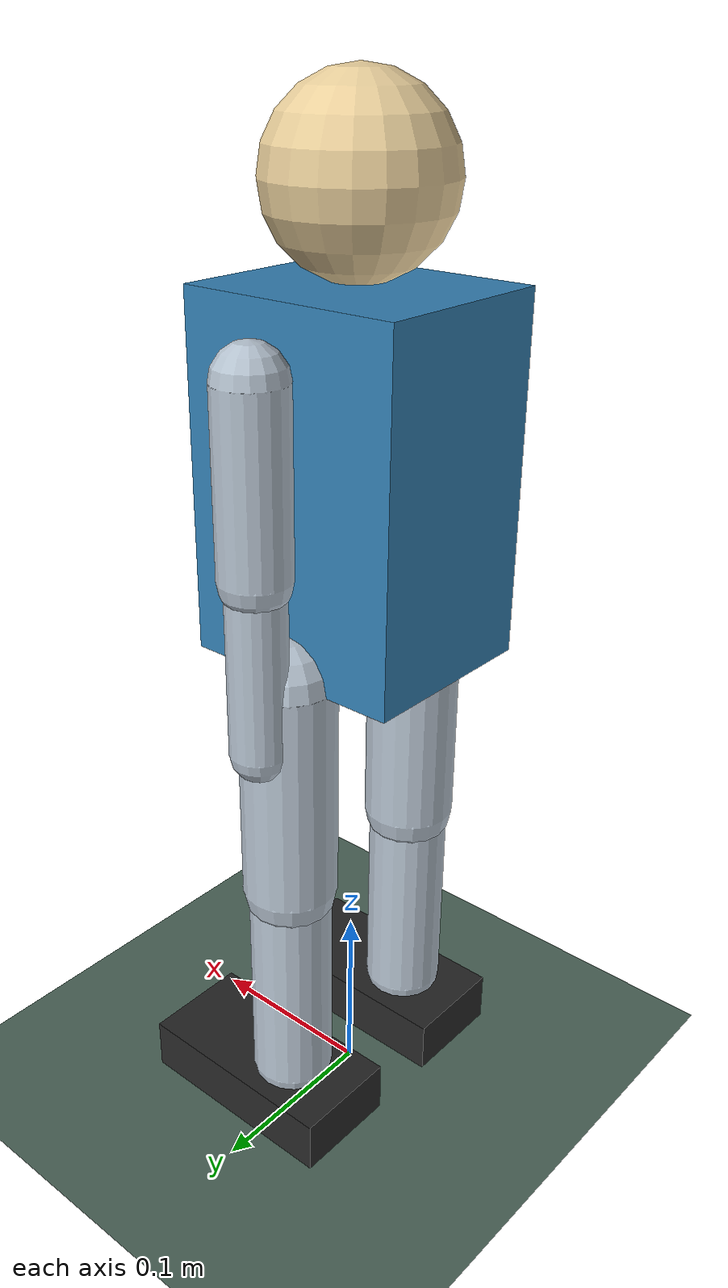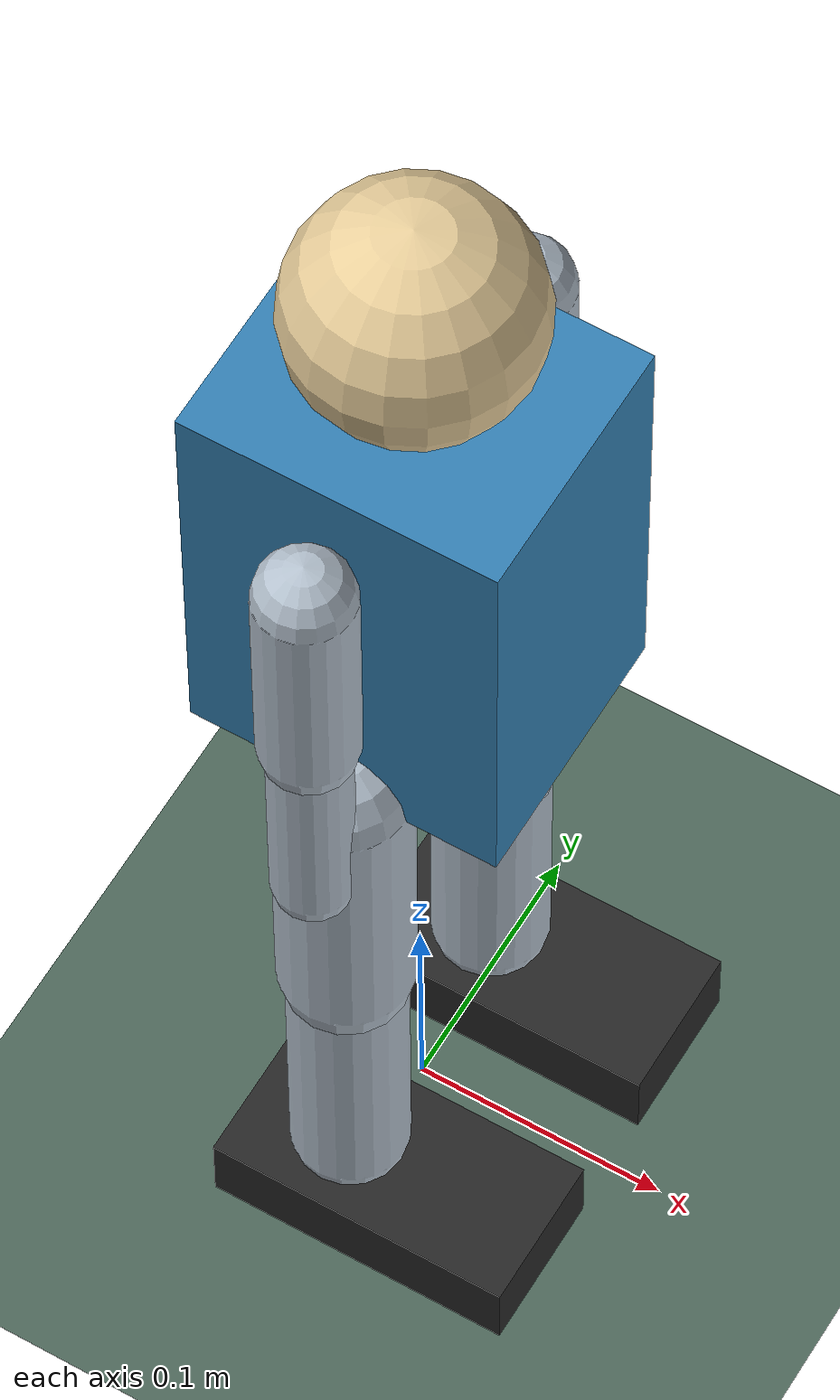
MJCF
<mujoco model="mini_humanoid">

  <!-- Acilar DERECE cinsinden (okumasi kolay). autolimits: range varsa eklem sinirli. -->
  <compiler angle="degree" autolimits="true"/>
  <!-- timestep: fizigi 5 ms adimlarla coz. gravity: -z yonunde 9.81. -->
  <option timestep="0.005" gravity="0 0 -9.81"/>

  <!-- Render tuvali boyutu (goruntu almak icin) -->
  <visual><global offwidth="1024" offheight="1024"/></visual>

  <!-- VARSAYILANLAR: tekrar tekrar yazmamak icin ortak ayarlar -->
  <default>
    <!-- Her eklem: damping=surtunme, armature=motorun yansiyan atalati (Gun-1 dersi!) -->
    <joint type="hinge" damping="0.3" armature="0.01"/>
    <!-- Uzuvlar kapsul (capsule); yogunluktan kutle otomatik hesaplanir -->
    <geom type="capsule" density="900" rgba="0.7 0.75 0.8 1" friction="1 0.1 0.1"/>

    <!-- POZISYON aktuator = HOBI SERVO: hedef aci verirsin, ic-PD onu tork'a cevirir,
         forcerange = servonun TORK TAVANI (asamaz). Bizim 'A' secimimizin kod hali. -->
    <default class="bacak_motor"><position kp="40" forcerange="-8 8"/></default>  <!-- XM540 ~8 Nm -->
    <default class="kol_motor"><position kp="20" forcerange="-3 3"/></default>    <!-- XM430/XL430 ~3 Nm -->
  </default>

  <worldbody>
    <light pos="0 0 2" dir="0 0 -1" diffuse="1 1 1"/>
    <geom name="zemin" type="plane" size="3 3 0.1" rgba="0.3 0.4 0.35 1"/>

    <!-- KOK: torso. freejoint = havada yuzen taban (6 DOF, MOTORSUZ).
         Bacaklar bunu ayakta tutmak zorunda. z=0.365'te basliyor (ayaklar zemine deger). -->
    <body name="torso" pos="0 0 0.365">
      <freejoint name="root"/>
      <geom name="torso_g" type="box" size="0.06 0.05 0.09" density="600" rgba="0.2 0.5 0.7 1"/>

      <!-- ============ SOL BACAK (6 DOF) ============ -->
      <body name="l_thigh" pos="0 0.05 -0.09">
        <joint name="l_hip_yaw"   axis="0 0 1" range="-40 40"/>   <!-- kalca: 3 eklem ayni noktada -->
        <joint name="l_hip_roll"  axis="1 0 0" range="-30 30"/>
        <joint name="l_hip_pitch" axis="0 1 0" range="-90 60"/>
        <geom name="l_thigh_g" fromto="0 0 0  0 0 -0.12" size="0.025"/>
        <body name="l_shank" pos="0 0 -0.12">
          <joint name="l_knee" axis="0 1 0" range="0 120"/>       <!-- diz tek yone bukulur -->
          <geom name="l_shank_g" fromto="0 0 0  0 0 -0.12" size="0.022"/>
          <body name="l_foot" pos="0 0 -0.12">
            <joint name="l_ankle_pitch" axis="0 1 0" range="-50 50"/>
            <joint name="l_ankle_roll"  axis="1 0 0" range="-25 25"/>
            <geom name="l_foot_g" type="box" pos="0.02 0 -0.02" size="0.06 0.03 0.015" density="700" rgba="0.15 0.15 0.15 1"/>
          </body>
        </body>
      </body>

      <!-- ============ SAG BACAK (ayna: y negatif) ============ -->
      <body name="r_thigh" pos="0 -0.05 -0.09">
        <joint name="r_hip_yaw"   axis="0 0 1" range="-40 40"/>
        <joint name="r_hip_roll"  axis="1 0 0" range="-30 30"/>
        <joint name="r_hip_pitch" axis="0 1 0" range="-90 60"/>
        <geom name="r_thigh_g" fromto="0 0 0  0 0 -0.12" size="0.025"/>
        <body name="r_shank" pos="0 0 -0.12">
          <joint name="r_knee" axis="0 1 0" range="0 120"/>
          <geom name="r_shank_g" fromto="0 0 0  0 0 -0.12" size="0.022"/>
          <body name="r_foot" pos="0 0 -0.12">
            <joint name="r_ankle_pitch" axis="0 1 0" range="-50 50"/>
            <joint name="r_ankle_roll"  axis="1 0 0" range="-25 25"/>
            <geom name="r_foot_g" type="box" pos="0.02 0 -0.02" size="0.06 0.03 0.015" density="700" rgba="0.15 0.15 0.15 1"/>
          </body>
        </body>
      </body>

      <!-- ============ SOL KOL (3 DOF) ============ -->
      <body name="l_uarm" pos="0 0.07 0.06">
        <joint name="l_shoulder_pitch" axis="0 1 0" range="-120 120"/>
        <joint name="l_shoulder_roll"  axis="1 0 0" range="-20 90"/>
        <geom name="l_uarm_g" fromto="0 0 0  0 0 -0.09" size="0.018"/>
        <body name="l_farm" pos="0 0 -0.09">
          <joint name="l_elbow" axis="0 1 0" range="-120 0"/>
          <geom name="l_farm_g" fromto="0 0 0  0 0 -0.09" size="0.015"/>
        </body>
      </body>

      <!-- ============ SAG KOL ============ -->
      <body name="r_uarm" pos="0 -0.07 0.06">
        <joint name="r_shoulder_pitch" axis="0 1 0" range="-120 120"/>
        <joint name="r_shoulder_roll"  axis="1 0 0" range="-90 20"/>
        <geom name="r_uarm_g" fromto="0 0 0  0 0 -0.09" size="0.018"/>
        <body name="r_farm" pos="0 0 -0.09">
          <joint name="r_elbow" axis="0 1 0" range="-120 0"/>
          <geom name="r_farm_g" fromto="0 0 0  0 0 -0.09" size="0.015"/>
        </body>
      </body>

      <!-- ============ BAS (2 DOF: pan + tilt, kamera platformu) ============ -->
      <body name="head" pos="0 0 0.09">
        <joint name="neck_yaw"   axis="0 0 1" range="-60 60"/>
        <joint name="neck_pitch" axis="0 1 0" range="-30 30"/>
        <geom name="head_g" type="sphere" size="0.045" pos="0 0 0.045" density="500" rgba="0.9 0.8 0.6 1"/>
      </body>
    </body>
  </worldbody>

  <!-- ============ 20 AKTUATOR (servo) ============ -->
  <actuator>
    <position class="bacak_motor" name="m_l_hip_yaw"     joint="l_hip_yaw"/>
    <position class="bacak_motor" name="m_l_hip_roll"    joint="l_hip_roll"/>
    <position class="bacak_motor" name="m_l_hip_pitch"   joint="l_hip_pitch"/>
    <position class="bacak_motor" name="m_l_knee"        joint="l_knee"/>
    <position class="bacak_motor" name="m_l_ankle_pitch" joint="l_ankle_pitch" forcerange="-3 3"/>    <!-- bilek zayif (gercekci; sim'de 'ucma' yok) -->
    <position class="bacak_motor" name="m_l_ankle_roll"  joint="l_ankle_roll"  forcerange="-1.5 1.5"/>
    <position class="bacak_motor" name="m_r_hip_yaw"     joint="r_hip_yaw"/>
    <position class="bacak_motor" name="m_r_hip_roll"    joint="r_hip_roll"/>
    <position class="bacak_motor" name="m_r_hip_pitch"   joint="r_hip_pitch"/>
    <position class="bacak_motor" name="m_r_knee"        joint="r_knee"/>
    <position class="bacak_motor" name="m_r_ankle_pitch" joint="r_ankle_pitch" forcerange="-3 3"/>
    <position class="bacak_motor" name="m_r_ankle_roll"  joint="r_ankle_roll"  forcerange="-1.5 1.5"/>
    <position class="kol_motor"   name="m_l_sh_pitch"    joint="l_shoulder_pitch"/>
    <position class="kol_motor"   name="m_l_sh_roll"     joint="l_shoulder_roll"/>
    <position class="kol_motor"   name="m_l_elbow"       joint="l_elbow"/>
    <position class="kol_motor"   name="m_r_sh_pitch"    joint="r_shoulder_pitch"/>
    <position class="kol_motor"   name="m_r_sh_roll"     joint="r_shoulder_roll"/>
    <position class="kol_motor"   name="m_r_elbow"       joint="r_elbow"/>
    <position class="kol_motor"   name="m_neck_yaw"      joint="neck_yaw"/>
    <position class="kol_motor"   name="m_neck_pitch"    joint="neck_pitch"/>
  </actuator>
</mujoco>
